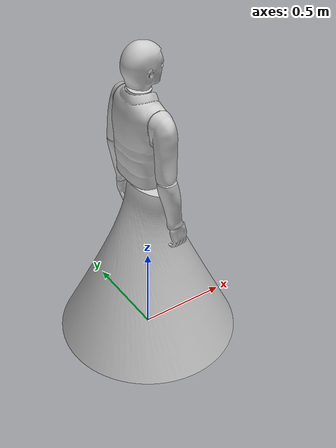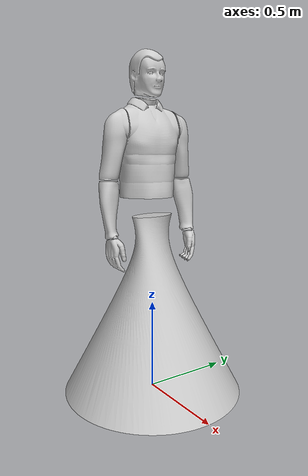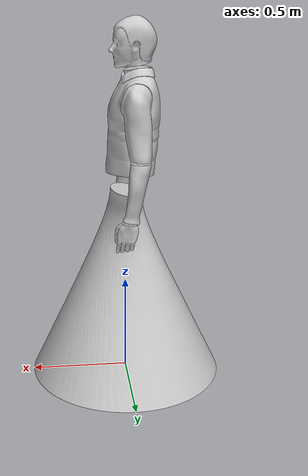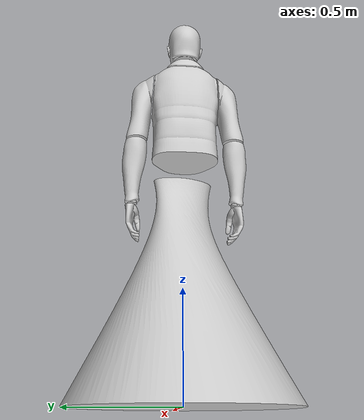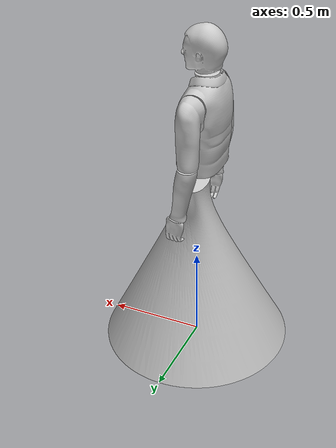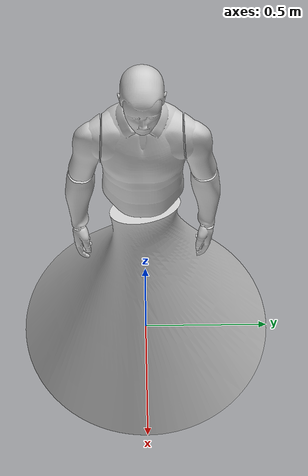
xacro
<?xml version="1.0" ?>

<robot name="human_model" xmlns:xacro="http://www.ros.org/wiki/xacro">

  <link name="world"/>

  <!-- leg_ws to world -->
  <joint name="world_joint" type="fixed">
    <origin xyz="0 0 0" rpy="0 0 0.22"/>
    <parent link="world"/>
    <child link="leg_ws"/>
  </joint>

  <!-- leg_ws link -->
  <link name="leg_ws">
    <collision>
      <origin xyz="0 0 0" rpy="0 0 0"/>
      <geometry>
        <mesh filename="package://human_model/meshes/stl/leg_ws.stl" scale="0.001 0.001 0.001"/>
      </geometry>
    </collision>

    <visual>
      <origin xyz="0 0 0" rpy="0 0 0"/>
      <geometry>
        <mesh filename="package://human_model/meshes/stl/leg_ws.stl" scale="0.001 0.001 0.001"/>
      </geometry>
      <material name="grey"/>
    </visual>

    <inertial>
      <mass value="1"/>
      <inertia ixx="100"  ixy="0"  ixz="0" iyy="100" iyz="0" izz="100" />
    </inertial>
  </link>

  <!-- model to leg_ws -->
  <joint name="leg_joint" type="fixed">
    <origin xyz="-0.035 0 1.1" rpy="0 0 -0.22"/>
    <parent link="leg_ws"/>
    <child link="body"/>
  </joint>

  <!-- model link -->
  <link name="body">
    <collision>
      <origin xyz="0 0 0" rpy="0 0 0"/>
      <geometry>
        <mesh filename="package://human_model/meshes/stl/body.stl" scale="0.001 0.001 0.001"/>
      </geometry>
    </collision>

    <visual>
      <origin xyz="0 0 0" rpy="0 0 0"/>
      <geometry>
        <mesh filename="package://human_model/meshes/stl/body.stl" scale="0.001 0.001 0.001"/>
      </geometry>
      <material name="grey"/>
    </visual>

    <inertial>
      <mass value="1e-5" />
      <origin xyz="0 0 0" rpy="0 0 0"/>
      <inertia ixx="1e-6" ixy="0" ixz="0" iyy="1e-6" iyz="0" izz="1e-6" />
    </inertial>
  </link>

  <!-- head to body -->
  <joint name="neck" type="fixed">
    <origin xyz="0 0 0.52" rpy="0 0 0"/>
    <parent link="body"/>
    <child link="head"/>
  </joint>

  <!-- head link -->
  <link name="head">
    <collision>
      <origin xyz="0 0 0" rpy="0 0 0"/>
      <geometry>
        <mesh filename="package://human_model/meshes/stl/head.stl" scale="0.001 0.001 0.001"/>
      </geometry>
    </collision>

    <visual>
      <origin xyz="0 0 0" rpy="0 0 0"/>
      <geometry>
        <mesh filename="package://human_model/meshes/stl/head.stl" scale="0.001 0.001 0.001"/>
      </geometry>
      <material name="grey"/>
    </visual>

    <inertial>
      <mass value="1e-5" />
      <origin xyz="0 0 0" rpy="0 0 0"/>
      <inertia ixx="1e-6" ixy="0" ixz="0" iyy="1e-6" iyz="0" izz="1e-6" />
    </inertial>
  </link>

  <!-- =============================LEFT ARM========================================== -->
  <!-- upper to body -->
  <joint name="left_shoulder" type="fixed">
    <origin xyz="0.015 0.225 0.46" rpy="0 0 0"/>
    <parent link="body"/>
    <child link="left_upper"/>
  </joint>

  <!-- upper link -->
  <link name="left_upper">
    <collision>
      <origin xyz="0 0 0" rpy="0 0 0"/>
      <geometry>
        <mesh filename="package://human_model/meshes/stl/left_upper.stl" scale="0.001 0.001 0.001"/>
      </geometry>
    </collision>

    <visual>
      <origin xyz="0 0 0" rpy="0 0 0"/>
      <geometry>
        <mesh filename="package://human_model/meshes/stl/left_upper.stl" scale="0.001 0.001 0.001"/>
      </geometry>
      <material name="grey"/>
    </visual>

    <inertial>
      <mass value="1e-5" />
      <origin xyz="0 0 0" rpy="0 0 0"/>
      <inertia ixx="1e-6" ixy="0" ixz="0" iyy="1e-6" iyz="0" izz="1e-6" />
    </inertial>
  </link>

  <!-- lower to upper -->
  <joint name="left_elbow" type="fixed">
    <origin xyz="-0.01 0.015 -0.368" rpy="0 0 0"/>
    <parent link="left_upper"/>
    <child link="left_lower"/>
  </joint>

  <!-- lower link -->
  <link name="left_lower">
    <collision>
      <origin xyz="0 0 0" rpy="0 0 0"/>
      <geometry>
        <mesh filename="package://human_model/meshes/stl/left_lower.stl" scale="0.001 0.001 0.001"/>
      </geometry>
    </collision>

    <visual>
      <origin xyz="0 0 0" rpy="0 0 0"/>
      <geometry>
        <mesh filename="package://human_model/meshes/stl/left_lower.stl" scale="0.001 0.001 0.001"/>
      </geometry>
      <material name="grey"/>
    </visual>

    <inertial>
      <mass value="1e-5" />
      <origin xyz="0 0 0" rpy="0 0 0"/>
      <inertia ixx="1e-6" ixy="0" ixz="0" iyy="1e-6" iyz="0" izz="1e-6" />
    </inertial>
  </link>

  <!-- hand to lower -->
  <joint name="left_wrist" type="fixed">
    <origin xyz="0.05 0 -0.29" rpy="0 0 0"/>
    <parent link="left_lower"/>
    <child link="left_hand"/>
  </joint>

  <!-- hand link -->
  <link name="left_hand">
    <collision>
      <origin xyz="0 0 0" rpy="0 0 0"/>
      <geometry>
        <mesh filename="package://human_model/meshes/stl/left_hand.stl" scale="0.001 0.001 0.001"/>
      </geometry>
    </collision>

    <visual>
      <origin xyz="0 0 0" rpy="0 0 0"/>
      <geometry>
        <mesh filename="package://human_model/meshes/stl/left_hand.stl" scale="0.001 0.001 0.001"/>
      </geometry>
      <material name="grey"/>
    </visual>

    <inertial>
      <mass value="1e-5" />
      <origin xyz="0 0 0" rpy="0 0 0"/>
      <inertia ixx="1e-6" ixy="0" ixz="0" iyy="1e-6" iyz="0" izz="1e-6" />
    </inertial>
  </link>

  <!-- =============================RIGHT ARM========================================== -->
  <!-- upper to body -->
  <joint name="right_shoulder" type="fixed">
    <origin xyz="0.015 -0.225 0.46" rpy="0 0 0"/>
    <parent link="body"/>
    <child link="right_upper"/>
  </joint>

  <!-- upper link -->
  <link name="right_upper">
    <collision>
      <origin xyz="0 0 0" rpy="0 0 0"/>
      <geometry>
        <mesh filename="package://human_model/meshes/stl/right_upper.stl" scale="0.001 0.001 0.001"/>
      </geometry>
    </collision>

    <visual>
      <origin xyz="0 0 0" rpy="0 0 0"/>
      <geometry>
        <mesh filename="package://human_model/meshes/stl/right_upper.stl" scale="0.001 0.001 0.001"/>
      </geometry>
      <material name="grey"/>
    </visual>

    <inertial>
      <mass value="1e-5" />
      <origin xyz="0 0 0" rpy="0 0 0"/>
      <inertia ixx="1e-6" ixy="0" ixz="0" iyy="1e-6" iyz="0" izz="1e-6" />
    </inertial>
  </link>

  <!-- lower to upper -->
  <joint name="right_elbow" type="fixed">
    <origin xyz="-0.01 -0.015 -0.368" rpy="0 0 0"/>
    <parent link="right_upper"/>
    <child link="right_lower"/>
  </joint>

  <!-- lower link -->
  <link name="right_lower">
    <collision>
      <origin xyz="0 0 0" rpy="0 0 0"/>
      <geometry>
        <mesh filename="package://human_model/meshes/stl/right_lower.stl" scale="0.001 0.001 0.001"/>
      </geometry>
    </collision>

    <visual>
      <origin xyz="0 0 0" rpy="0 0 0"/>
      <geometry>
        <mesh filename="package://human_model/meshes/stl/right_lower.stl" scale="0.001 0.001 0.001"/>
      </geometry>
      <material name="grey"/>
    </visual>

    <inertial>
      <mass value="1e-5" />
      <origin xyz="0 0 0" rpy="0 0 0"/>
      <inertia ixx="1e-6" ixy="0" ixz="0" iyy="1e-6" iyz="0" izz="1e-6" />
    </inertial>
  </link>

  <!-- hand to lower -->
  <joint name="right_wrist" type="fixed">
    <origin xyz="0.05 0 -0.29" rpy="0 0 0"/>
    <parent link="right_lower"/>
    <child link="right_hand"/>
  </joint>

  <!-- hand link -->
  <link name="right_hand">
    <collision>
      <origin xyz="0 0 0" rpy="0 0 0"/>
      <geometry>
        <mesh filename="package://human_model/meshes/stl/right_hand.stl" scale="0.001 0.001 0.001"/>
      </geometry>
    </collision>

    <visual>
      <origin xyz="0 0 0" rpy="0 0 0"/>
      <geometry>
        <mesh filename="package://human_model/meshes/stl/right_hand.stl" scale="0.001 0.001 0.001"/>
      </geometry>
      <material name="grey"/>
    </visual>

    <inertial>
      <mass value="1e-5" />
      <origin xyz="0 0 0" rpy="0 0 0"/>
      <inertia ixx="1e-6" ixy="0" ixz="0" iyy="1e-6" iyz="0" izz="1e-6" />
    </inertial>
  </link>

  <!-- Colors -->
  <material name="blue">
    <color rgba="0.1 0.1 0.9 1"/>
  </material>

  <material name="grey">
    <color rgba="0.8 0.8 0.8 1"/>
  </material>

  <material name="red">
    <color rgba="0.9 0.1 0.1 1"/>
  </material>

  <material name="green">
    <color rgba="0.2 0.9 0.2 1"/>
  </material>

</robot>
